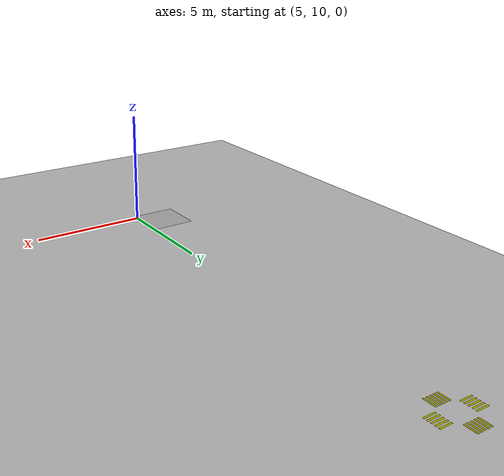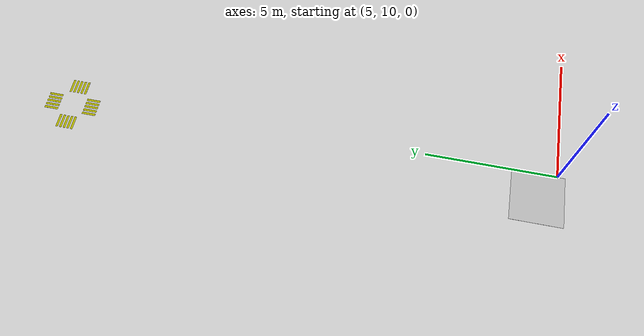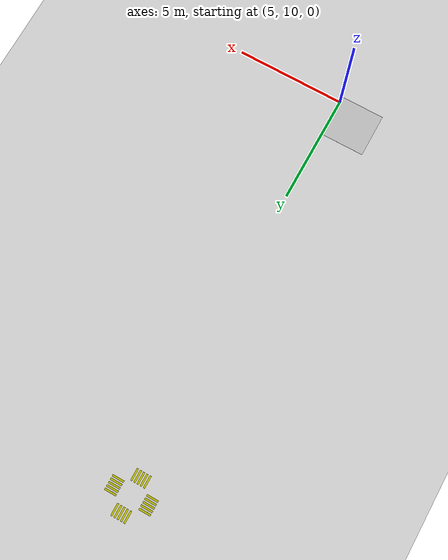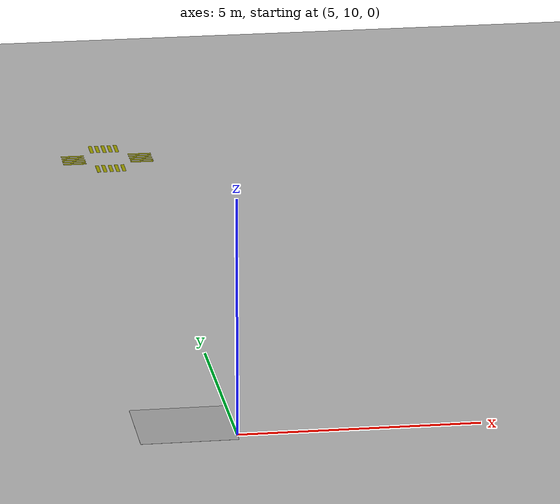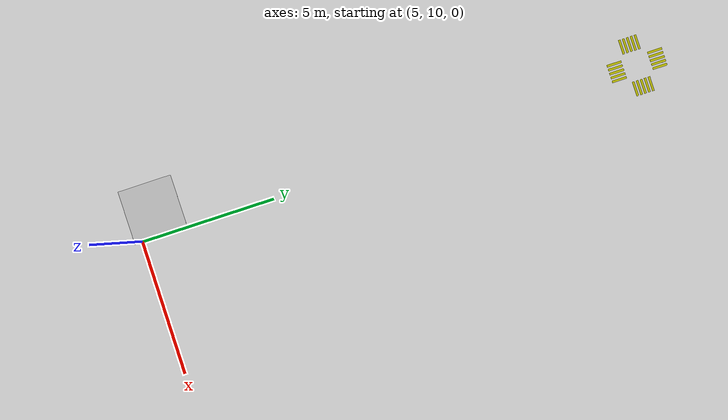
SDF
<sdf version="1.5">
 <world name="default">
  <include><uri>model://sun</uri></include>
  <include><uri>model://ground_plane</uri></include>
  <include><uri>model://curved_road</uri><pose>4.0 10.72 0.01 0 0 -3.140185</pose></include>
  <include><uri>model://zebra_mark_small</uri><pose>4.2 28.25 0 0 0 0</pose></include>
  <include><uri>model://zebra_mark_small</uri><pose>4.35 28.25 0 0 0 0</pose></include>
  <include><uri>model://zebra_mark_small</uri><pose>4.503 28.25 0 0 0 0</pose></include>
  <include><uri>model://zebra_mark_small</uri><pose>4.65 28.25 0 0 0 0</pose></include>
  <include><uri>model://zebra_mark_small</uri><pose>4.8 28.25 0 0 0 0</pose></include>
  <include><uri>model://zebra_mark_small</uri><pose>4.2 29.8 0 0 0 0</pose></include>
  <include><uri>model://zebra_mark_small</uri><pose>4.35 29.8 0 0 0 0</pose></include>
  <include><uri>model://zebra_mark_small</uri><pose>4.503 29.8 0 0 0 0</pose></include>
  <include><uri>model://zebra_mark_small</uri><pose>4.65 29.8 0 0 0 0</pose></include>
  <include><uri>model://zebra_mark_small</uri><pose>4.8 29.8 0 0 0 0</pose></include>
  <include><uri>model://zebra_mark_small</uri><pose>5.3 28.7 0 0 0 1.57</pose></include>
  <include><uri>model://zebra_mark_small</uri><pose>5.3 28.85 0 0 0 1.57</pose></include>
  <include><uri>model://zebra_mark_small</uri><pose>5.3 29 0 0 0 1.57</pose></include>
  <include><uri>model://zebra_mark_small</uri><pose>5.3 29.15 0 0 0 1.57</pose></include>
  <include><uri>model://zebra_mark_small</uri><pose>5.3 29.3 0 0 0 1.57</pose></include>
  <include><uri>model://zebra_mark_small</uri><pose>3.7 28.7 0 0 0 1.57</pose></include>
  <include><uri>model://zebra_mark_small</uri><pose>3.7 28.85 0 0 0 1.57</pose></include>
  <include><uri>model://zebra_mark_small</uri><pose>3.7 29 0 0 0 1.57</pose></include>
  <include><uri>model://zebra_mark_small</uri><pose>3.7 29.15 0 0 0 1.57</pose></include>
  <include><uri>model://zebra_mark_small</uri><pose>3.7 29.3 0 0 0 1.57</pose></include>
 </world>
</sdf>

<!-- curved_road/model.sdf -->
<sdf version="1.4">
	<model name="curved_road">
		<static>true</static>
		<link name="link">
			<collision name="collision">
				<geometry>
					<plane>
						<normal>0 0 1</normal>
						<size>2 2</size>
					</plane>
				</geometry>
				<surface>
					<friction>
						<ode>
							<mu>100</mu>
							<mu2>50</mu2>
						</ode>
					</friction>
				</surface>
			</collision>
			<visual name="visual">
				<geometry>
					<plane>
						<normal>0 0 1</normal>
						<size>2 2</size>
					</plane>
				</geometry>
				<material>
					<script>
						<uri>model://curved_road/materials/scripts</uri>
						<uri>model://curved_road/materials/textures</uri>
						<name>curved_road/Image</name>
					</script>
				</material>
			</visual>
		</link>
	</model>
</sdf>

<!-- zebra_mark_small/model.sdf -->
<sdf version='1.6'>
  <model name='zebra_mark_small'>
    <link name='link'>
      <inertial>
        <mass>1</mass>
        <inertia>
          <ixx>0.166667</ixx>
          <ixy>0</ixy>
          <ixz>0</ixz>
          <iyy>0.166667</iyy>
          <iyz>0</iyz>
          <izz>0.166667</izz>
        </inertia>
        <pose frame=''>0 0 0 0 -0 0</pose>
      </inertial>
      <self_collide>0</self_collide>
      <enable_wind>0</enable_wind>
      <kinematic>0</kinematic>
      <pose frame=''>0 0 0 0 -0 0</pose>
      <gravity>1</gravity>
      <visual name='visual'>
        <geometry>
          <box>
            <size>0.082048 0.5428 0.001028</size>
          </box>
        </geometry>
        <material>
          <script>
            <name>Gazebo/Grey</name>
            <uri>file://media/materials/scripts/gazebo.material</uri>
          </script>
          <ambient>0.5 0.5 0 0</ambient>
          <shader type='vertex'>
            <normal_map>__default__</normal_map>
          </shader>
          <diffuse>0.7 0.7 0 1</diffuse>
          <specular>0.41 0.41 0 1</specular>
          <emissive>0.5 0.5 0 1</emissive>
        </material>
        <pose frame=''>0 0 0 0 -0 0</pose>
        <transparency>0</transparency>
        <cast_shadows>1</cast_shadows>
      </visual>
      <collision name='collision'>
        <laser_retro>0</laser_retro>
        <max_contacts>10</max_contacts>
        <pose frame=''>0 0 0 0 -0 0</pose>
        <geometry>
          <box>
            <size>0.082048 0.5428 0.001028</size>
          </box>
        </geometry>
        <surface>
          <friction>
            <ode>
              <mu>1</mu>
              <mu2>1</mu2>
              <fdir1>0 0 0</fdir1>
              <slip1>0</slip1>
              <slip2>0</slip2>
            </ode>
            <torsional>
              <coefficient>1</coefficient>
              <patch_radius>0</patch_radius>
              <surface_radius>0</surface_radius>
              <use_patch_radius>1</use_patch_radius>
              <ode>
                <slip>0</slip>
              </ode>
            </torsional>
          </friction>
          <bounce>
            <restitution_coefficient>0</restitution_coefficient>
            <threshold>1e+06</threshold>
          </bounce>
          <contact>
            <collide_without_contact>0</collide_without_contact>
            <collide_without_contact_bitmask>1</collide_without_contact_bitmask>
            <collide_bitmask>1</collide_bitmask>
            <ode>
              <soft_cfm>0</soft_cfm>
              <soft_erp>0.2</soft_erp>
              <kp>1e+13</kp>
              <kd>1</kd>
              <max_vel>0.01</max_vel>
              <min_depth>0</min_depth>
            </ode>
            <bullet>
              <split_impulse>1</split_impulse>
              <split_impulse_penetration_threshold>-0.01</split_impulse_penetration_threshold>
              <soft_cfm>0</soft_cfm>
              <soft_erp>0.2</soft_erp>
              <kp>1e+13</kp>
              <kd>1</kd>
            </bullet>
          </contact>
        </surface>
      </collision>
    </link>
    <static>0</static>
    <allow_auto_disable>1</allow_auto_disable>
  </model>
</sdf>
